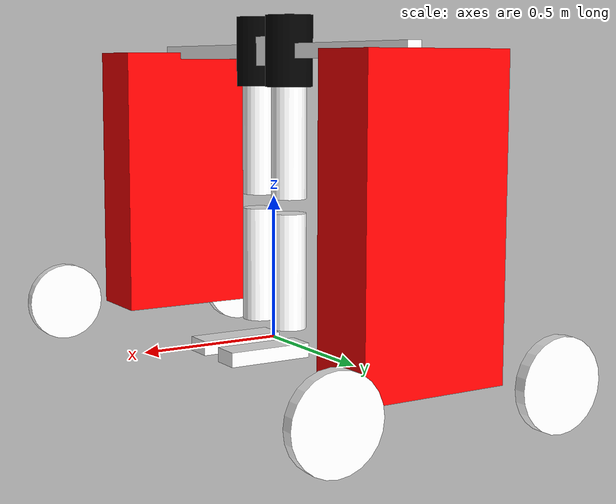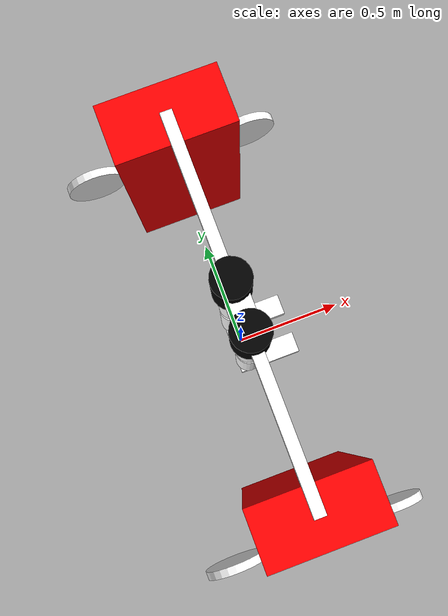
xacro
<?xml version="1.0"?>
<robot xmlns:xacro="http://www.ros.org/wiki/xacro" name="jetleg_wheeled_testrig">
    <xacro:arg name="initial_positions_file" default="initial_positions.yaml" />

    <!-- Import jetleg_wheeled_testrig urdf file -->
    <xacro:include filename="$(find jetleg_description)/urdf/jetleg_wheeled_testrig.xacro" />

    <!-- Import control_xacro -->
    <xacro:include filename="jetleg_wheeled_testrig.ros2_control.xacro" />

    <xacro:jetleg_wheeled_testrig_ros2_control name="GazeboSystem" initial_positions_file="$(arg initial_positions_file)"/>

</robot>

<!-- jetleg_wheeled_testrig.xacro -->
<robot xmlns:xacro="http://www.ros.org/wiki/xacro" name="jetleg_wheeled_testrig">

    <!-- Include the basic testrig -->
    <xacro:include filename="$(find jetleg_description)/urdf/testrig.xacro"/>
    <!-- Include the JetLeg -->
    <xacro:include filename="$(find jetleg_description)/urdf/jetleg.xacro"/>

    <!-- Define reusable variables -->
    <xacro:property name="wheel_length" value="0.04" />
    <xacro:property name="wheel_radius" value="0.15" />
    <xacro:property name="wheel_offset" value="0.4" />

    <!-- Define the wheel macro -->
    <xacro:macro name="wheel" params="wheelpos parentsupport reflect offset">
        <link name="wheel_${wheelpos}">
            <contact>
                <rolling_friction value="0.001"/>
                <spinning_friction value="0.001"/>
            </contact>
            <visual>
                <geometry>
                    <cylinder length="${wheel_length}" radius="${wheel_radius}" />
                </geometry>
                <material name="white" />
            </visual>

            <collision>
                <geometry>
                    <cylinder length="${wheel_length}" radius="${wheel_radius}" />
                </geometry>
                <contact_coefficients mu="1.0" />
            </collision>

            <inertial>
                <mass value="10"/>
                <inertia ixx="0.001" ixy="0" ixz="0" iyy="0.001" iyz="0" izz="0.001"/>
            </inertial>
        </link>

        <joint name="wheel_${wheelpos}_joint" type="continuous">
            <parent link="support_${parentsupport}" />
            <child link="wheel_${wheelpos}" />
            <origin xyz="${offset} ${0.2 * reflect} -${gantry_height / 2}" rpy="1.57 0 0" />
            <axis xyz="0 0 -1" />
        </joint>
    </xacro:macro>

    <!-- Create four wheels for the testrig -->
    <xacro:wheel wheelpos="fore_left" parentsupport="left" reflect="1" offset="${wheel_offset}" />
    <xacro:wheel wheelpos="fore_right" parentsupport="right" reflect="-1" offset="${wheel_offset}" />

    <xacro:wheel wheelpos="hind_left" parentsupport="left" reflect="1" offset="${-wheel_offset}" />
    <xacro:wheel wheelpos="hind_right" parentsupport="right" reflect="-1" offset="${-wheel_offset}" />

    <!-- Create two JetLegs -->
    <xacro:jetleg identifier="">
    </xacro:jetleg>

    <xacro:jetleg identifier="_intact">
    </xacro:jetleg>

    <!-- Use mounts to attach legs to the testrig -->
    <link name="mount">
        <visual>
            <geometry>
                <cylinder length="${mount_length}" radius="0.08"/>
            </geometry>
            <material name="black"/>
        </visual>
        <inertial>
                <mass value="1"/>
                <inertia ixx="1" ixy="0" ixz="0" iyy="1" iyz="0" izz="1"/>
                <origin rpy="0 0 0" xyz="0 0 0"/>
        </inertial>
    </link>
    <gazebo reference="mount">
        <material>Gazebo/Black</material>
    </gazebo>

    <link name="mount_intact">
        <visual>
            <geometry>
                <cylinder length="${mount_length}" radius="0.08"/>
            </geometry>
            <material name="black"/>
        </visual>
        <inertial>
                <mass value="1"/>
                <inertia ixx="1" ixy="0" ixz="0" iyy="1" iyz="0" izz="1"/>
                <origin rpy="0 0 0" xyz="0 0 0"/>
        </inertial>
    </link>
    <gazebo reference="mount_intact">
        <material>Gazebo/Black</material>
    </gazebo>

    <!-- Define the additional joints of the robot -->

    <joint name="vertical_rail_to_mount" type="revolute">
        <origin rpy="0 0 0" xyz="0 -0.1 0"/>
        <parent link="vertical_rail"/>
        <child link="mount"/>
        <limit effort="100" lower="${-mount_angle_lim}" upper="${mount_angle_lim}" velocity="10"/>
        <axis xyz="0 1 0"/>
    </joint>

    <joint name="vertical_rail_to_mount_intact" type="revolute">
        <origin rpy="0 0 0" xyz="0 0.1 0"/>
        <parent link="vertical_rail"/>
        <child link="mount_intact"/>
        <limit effort="100" lower="${-mount_angle_lim}" upper="${mount_angle_lim}" velocity="10"/>
        <axis xyz="0 1 0"/>
    </joint>

    <joint name="mount_to_jetleg" type="fixed">
        <parent link="mount"/>
        <child link="thigh"/>
        <origin xyz="0 0 ${-thigh_length/2}" rpy="0 0 0"/>
        <axis xyz="0 0 -1" />
        <limit effort="100" velocity="10" lower="0" upper="0.6" />
    </joint>

    <joint name="mount_to_jetleg_intact" type="fixed">
        <parent link="mount_intact"/>
        <child link="thigh_intact"/>
        <origin xyz="0 0 ${-thigh_length/2}" rpy="0 0 0"/>
        <axis xyz="0 0 -1" />
        <limit effort="100" velocity="10" lower="0" upper="0.6" />
    </joint>

    <!-- Import control_xacro -->

    <gazebo>
        <plugin filename="libgazebo_ros2_control.so" name="gazebo_ros2_control">
            <parameters>$(find jetleg_moveit_config)/config/ros2_controllers.yaml</parameters>

            <robot_param>robot_description</robot_param>
            <robot_param_node>robot_state_publisher</robot_param_node>
        </plugin>
    </gazebo>

</robot>

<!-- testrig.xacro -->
<robot xmlns:xacro="http://www.ros.org/wiki/xacro" name="testrig">

    <xacro:include filename="$(find jetleg_description)/urdf/colors.xacro"/>

    <xacro:property name="gantry_height" value="1" />
    <xacro:property name="gantry_width" value="1.6" />
    <xacro:property name="mount_angle_lim" value="${40*pi/180}" />
    <xacro:property name="mount_length" value="0.24" />

    <link name="base_link">
    </link>

    <link name="vertical_rail">
        <visual>
            <geometry>
                <box size="0.1 0.1 0.1"/>
            </geometry>
            <material name="white"/>
        </visual>
        <inertial>
            <mass value="30"/>
            <inertia ixx="1" ixy="0" ixz="0" iyy="1" iyz="0" izz="1"/>
        </inertial>
    </link>
    <gazebo reference="vertical_rail">
        <material>Gazebo/White</material>
    </gazebo>

    <link name="gantry">
        <visual>
            <geometry>
                <box size="0.05 ${gantry_width} 0.05"/>
            </geometry>
            <material name="white"/>
        </visual>

        <inertial>
            <mass value="1"/>
            <inertia ixx="1" ixy="0" ixz="0" iyy="1" iyz="0" izz="1"/>
        </inertial>
    </link>
    <gazebo reference="gantry">
        <material>Gazebo/White</material>
    </gazebo>

    <xacro:macro name="support" params="postfix reflect">
        <link name="support_${postfix}">
            <visual>
                <geometry>
                    <box size="0.5 0.25 ${gantry_height}"/>
                </geometry>
                <material name="red"/>
            </visual>
            <collision>
                <geometry>
                    <box size="0.5 0.25 ${gantry_height}"/>
                </geometry>
            </collision>
            <inertial>
                <mass value="1000"/>
                <inertia ixx="1" ixy="0" ixz="0" iyy="1" iyz="0" izz="1"/>
            </inertial>
        </link>
        <gazebo reference="support_${postfix}">
            <material>Gazebo/Red</material>
        </gazebo>

        <joint name="gantry_to_support_${postfix}" type="fixed">
            <parent link="gantry"/>
            <child link="support_${postfix}"/>
            <origin xyz="0 ${reflect * gantry_width/2} ${-gantry_height/2}" />
        </joint>
    </xacro:macro>

    <xacro:support postfix="left" reflect="1" />
    <xacro:support postfix="right" reflect="-1" />

    <joint name="base_to_gantry" type="fixed">
        <origin rpy="0 0 0" xyz="0 0 ${gantry_height}"/>
        <parent link="base_link"/>
        <child link="gantry"/>
    </joint>

    <joint name="gantry_to_vertical_rail" type="prismatic">
        <origin rpy="0 0 0" xyz="0 0 0"/>
        <parent link="gantry"/>
        <child link="vertical_rail"/>
        <limit effort="100" lower="-0.5" upper="0.0" velocity="10"/>
        <axis xyz="0 0 1"/>
    </joint>

    <!-- Import control_xacro -->

</robot>

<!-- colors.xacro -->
<robot xmlns:xacro="http://www.ros.org/wiki/xacro" name="colors">
    <material name="white">
        <color rgba="1 1 1 1"/>
    </material>
    <material name="black">
        <color rgba="0 0 0 1"/>
    </material>
    <material name="grey">
        <color rgba="0.5 0.5 0.5 1"/>
    </material>
    <material name="red">
        <color rgba="1 0 0 1"/>
    </material>
    <material name="red_transluscent">
        <color rgba="1 0 0 0.25"/>
    </material>
    <material name="white_transluscent">
        <color rgba="1 1 1 0.25"/>
    </material>
</robot>

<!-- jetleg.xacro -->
<robot xmlns:xacro="http://www.ros.org/wiki/xacro" name="jetleg">

    <xacro:property name="thigh_length" value="0.5" />
    <xacro:property name="shank_length" value="0.4" />
    <xacro:property name="knee_joint_radius" value="0.025" />
    <xacro:property name="ankle_joint_radius" value="0.025" />
    <xacro:property name="foot_length" value="0.3" />
    <xacro:property name="foot_width" value="0.1" />
    <xacro:property name="foot_height" value="0.05" />

    <xacro:property name="thigh_mass" value="20" />
    <xacro:property name="shank_mass" value="10" />
    <xacro:property name="foot_mass" value="1.5" />

    <xacro:macro name="jetleg" params="identifier">
        <link name="thigh${identifier}">
            <visual>
                <geometry>
                    <cylinder length="${thigh_length}" radius="0.06"/>
                </geometry>
                <material name="white"/>
            </visual>
            <collision>
                <geometry>
                    <cylinder length="${thigh_length}" radius="0.06"/>
                </geometry>
            </collision>
            <inertial>
            <mass value="${thigh_mass}"/>
            <inertia ixx="1" ixy="0" ixz="0" iyy="1" iyz="0" izz="1"/>
        </inertial>
        </link>
        <gazebo reference="thigh${identifier}">
            <material>Gazebo/White</material>
        </gazebo>

        <link name="shank${identifier}">
            <visual>
                <geometry>
                    <cylinder length="${shank_length}" radius="0.06"/>
                </geometry>
                <material name="white"/>
                <origin rpy="0 0 0" xyz="0 0 ${-shank_length/2-knee_joint_radius}"/>
            </visual>
            <collision>
                <geometry>
                    <cylinder length="${shank_length}" radius="0.06"/>
                </geometry>
                <origin rpy="0 0 0" xyz="0 0 ${-shank_length/2-knee_joint_radius}"/>
            </collision>
            <inertial>
                <mass value="${shank_mass}"/>
                <inertia ixx="1" ixy="0" ixz="0" iyy="1" iyz="0" izz="1"/>
                <origin rpy="0 0 0" xyz="0 0 ${-shank_length/2-knee_joint_radius}"/>
            </inertial>
        </link>
        <gazebo reference="shank${identifier}">
            <material>Gazebo/White</material>
        </gazebo>

        <joint name="knee_joint${identifier}" type="revolute">
            <origin rpy="0 0 0" xyz="0 0 ${-thigh_length/2-knee_joint_radius}"/>
            <parent link="thigh${identifier}"/>
            <child link="shank${identifier}"/>
            <axis xyz="0 1 0"/>
            <limit effort="100" lower="0.0" upper="2.5" velocity="10"/>
        </joint>

        <link name="foot${identifier}">
            <contact>
                <lateral_friction value="100"/>
            </contact>

            <visual>
                <geometry>
                    <box size="${foot_length} ${foot_width} ${foot_height}"/>
                </geometry>
                <material name="white"/>
                <origin xyz="${(foot_length/2-0.05)} 0 ${-ankle_joint_radius-foot_height/2}"/>
            </visual>
            <collision>
                <geometry>
                    <box size="${foot_length} ${foot_width} ${foot_height}"/>
                </geometry>
                <origin xyz="${(foot_length/2-0.05)} 0 ${-ankle_joint_radius-foot_height/2}"/>
            </collision>
            <inertial>
                <mass value="${foot_mass}"/>
                <inertia ixx="1" ixy="0" ixz="0" iyy="1" iyz="0" izz="1"/>
                <origin xyz="${(foot_length/2-0.05)} 0 ${-ankle_joint_radius-foot_height/2}"/>
            </inertial>
        </link>
        <gazebo reference="foot${identifier}">
            <material>Gazebo/White</material>
        </gazebo>

        <joint name="ankle_joint${identifier}" type="revolute">
            <origin rpy="0 0 0" xyz="0 0 ${-(knee_joint_radius + shank_length + ankle_joint_radius)}"/>
            <parent link="shank${identifier}"/>
            <child link="foot${identifier}"/>
            <axis xyz="0 1 0"/>
            <limit effort="100" lower="-0.1" upper="0.5" velocity="10"/>
        </joint>

        <!-- Import control_xacro -->

    </xacro:macro>
</robot>
